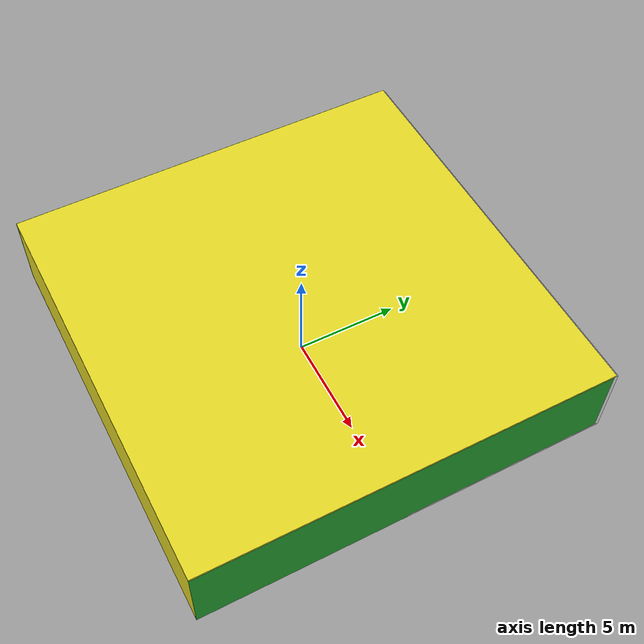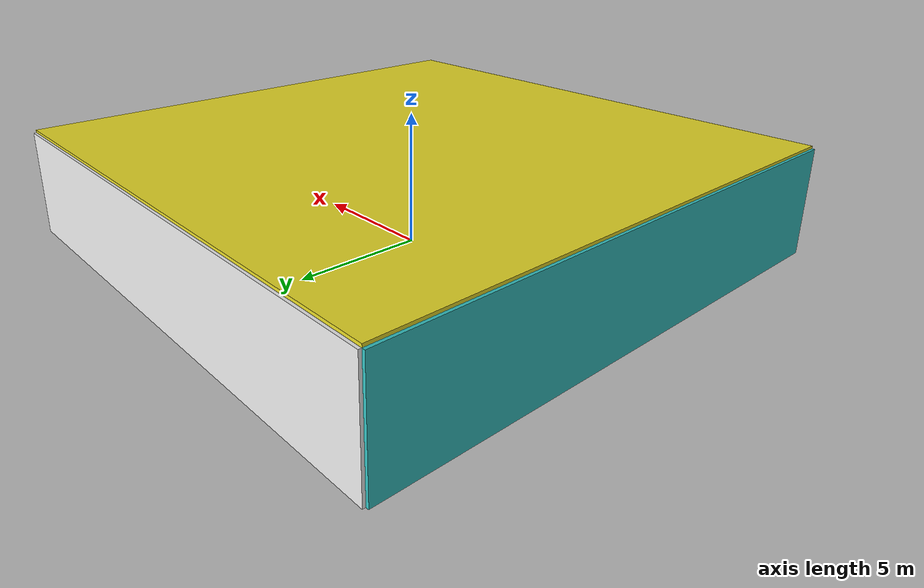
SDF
<sdf version="1.4">
 <world name="default">
  <physics type="ode">
   <max_step_size>0.001</max_step_size>
   <real_time_factor>1</real_time_factor>
   <real_time_update_rate>1000</real_time_update_rate>
   <gravity>0 0 -9.8</gravity>
  </physics>
  <scene><ambient>0.4 0.4 0.4 1</ambient><background>0.7 0.7 0.7 1</background><shadows>1</shadows></scene>
  <model name="Surrounding">
   <static>1</static>
   <link name="Ceiling">
    <collision name="Ceiling_Collision"><geometry><box><size>20 20 0.1</size></box></geometry></collision>
    <visual name="Ceiling_Visual">
     <geometry><box><size>20 20 0.1</size></box></geometry>
     <material>
      <script><uri>file://media/materials/scripts/gazebo.material</uri><name>Gazebo/YellowGlow</name></script>
     </material>
    </visual>
    <pose>0 0 4.05 0 0 0</pose>
   </link>
   <link name="Wall_South">
    <collision name="Wall_South_Collision">
     <geometry><box><size>20 0 4</size></box></geometry>
     <pose>0 0 2 0 -0 0</pose>
    </collision>
    <visual name="Wall_South_Visual">
     <pose>0 0 2 0 -0 0</pose>
     <geometry><box><size>20 0 4</size></box></geometry>
     <material>
      <script><uri>file://media/materials/scripts/gazebo.material</uri><name>Gazebo/YellowGlow</name></script>
     </material>
    </visual>
    <velocity_decay><linear>0</linear><angular>0</angular></velocity_decay>
    <pose>0 -10 0 0 -0 0</pose>
   </link>
   <link name="Wall_East">
    <collision name="Wall_21_Collision">
     <geometry><box><size>20 0 4</size></box></geometry>
     <pose>0 0 2 0 -0 0</pose>
    </collision>
    <visual name="Wall_21_Visual">
     <pose>0 0 2 0 -0 0</pose>
     <geometry><box><size>20 0 4</size></box></geometry>
     <material>
      <script><uri>file://media/materials/scripts/gazebo.material</uri><name>Gazebo/Green</name></script>
     </material>
    </visual>
    <velocity_decay><linear>0</linear><angular>0</angular></velocity_decay>
    <pose>10 0 0 0 -0 1.5708</pose>
   </link>
   <link name="Wall_North">
    <collision name="Wall_22_Collision">
     <geometry><box><size>20 0.2 4</size></box></geometry>
     <pose>0 0 2 0 -0 0</pose>
    </collision>
    <visual name="Wall_22_Visual">
     <pose>0 0 2 0 -0 0</pose>
     <geometry><box><size>20 0.2 4</size></box></geometry>
     <material>
      <script><uri>file://media/materials/scripts/gazebo.material</uri><name>Gazebo/White</name></script>
     </material>
    </visual>
    <velocity_decay><linear>0</linear><angular>0</angular></velocity_decay>
    <pose>0 10 0 0 -0 0</pose>
   </link>
   <link name="Wall_West">
    <collision name="Wall_23_Collision">
     <geometry><box><size>20 0.2 4</size></box></geometry>
     <pose>0 0 2 0 -0 0</pose>
    </collision>
    <visual name="Wall_23_Visual">
     <pose>0 0 2 0 -0 0</pose>
     <geometry><box><size>20 0.2 4</size></box></geometry>
     <material>
      <script><uri>file://media/materials/scripts/gazebo.material</uri><name>Gazebo/Turquoise</name></script>
     </material>
    </visual>
    <velocity_decay><linear>0</linear><angular>0</angular></velocity_decay>
    <pose>-10 0 0 0 0 -1.5708</pose>
   </link>
   <link name="Ground_link">
    <collision name="collision">
     <pose>0 0 .05 0 -0 0</pose>
     <geometry><box><size>20 20 0.1</size></box></geometry>
    </collision>
    <visual name="visual">
     <pose>0 0 .05 0 -0 0</pose>
     <geometry><box><size>20 20 0.1</size></box></geometry>
     <material>
      <script><uri>file://media/materials/scripts/gazebo.material</uri><name>Gazebo/WhiteGlow</name></script>
     </material>
    </visual>
   </link>
   <static>1</static>
  </model>
  <spherical_coordinates>
   <surface_model>EARTH_WGS84</surface_model>
   <latitude_deg>0</latitude_deg>
   <longitude_deg>0</longitude_deg>
   <elevation>0</elevation>
   <heading_deg>0</heading_deg>
  </spherical_coordinates>
  <light name="lightball_0" type="diffuse">
   <diffuse>0.8 0.8 0.8 1</diffuse>
   <specular>0.2 0.2 0.2 1</specular>
   <attenuation>
    <range>100</range>
    <constant>0.7</constant>
    <linear>0.01</linear>
    <quadratic>0.001</quadratic>
   </attenuation>
   <direction>-0.5 0.1 -0.9</direction>
   <pose>1.84231662139 -2.12688093923 1.29876900893 0 0 0</pose>
  </light>
  <light name="lightball_1" type="diffuse">
   <diffuse>0.8 0.8 0.8 1</diffuse>
   <specular>0.2 0.2 0.2 1</specular>
   <attenuation>
    <range>100</range>
    <constant>0.7</constant>
    <linear>0.01</linear>
    <quadratic>0.001</quadratic>
   </attenuation>
   <direction>-0.5 0.1 -0.9</direction>
   <pose>2.3206398161 -1.17776025731 1.4423505841 0 0 0</pose>
  </light>
  <light name="lightball_2" type="diffuse">
   <diffuse>0.8 0.8 0.8 1</diffuse>
   <specular>0.2 0.2 0.2 1</specular>
   <attenuation>
    <range>100</range>
    <constant>0.7</constant>
    <linear>0.01</linear>
    <quadratic>0.001</quadratic>
   </attenuation>
   <direction>-0.5 0.1 -0.9</direction>
   <pose>8.63733530466 -8.37776552783 1.10756171982 0 0 0</pose>
  </light>
  <light name="lightball_3" type="diffuse">
   <diffuse>0.8 0.8 0.8 1</diffuse>
   <specular>0.2 0.2 0.2 1</specular>
   <attenuation>
    <range>100</range>
    <constant>0.7</constant>
    <linear>0.01</linear>
    <quadratic>0.001</quadratic>
   </attenuation>
   <direction>-0.5 0.1 -0.9</direction>
   <pose>-8.87431624111 1.54439522073 1.09344179603 0 0 0</pose>
  </light>
  <light name="lightball_4" type="diffuse">
   <diffuse>0.8 0.8 0.8 1</diffuse>
   <specular>0.2 0.2 0.2 1</specular>
   <attenuation>
    <range>100</range>
    <constant>0.7</constant>
    <linear>0.01</linear>
    <quadratic>0.001</quadratic>
   </attenuation>
   <direction>-0.5 0.1 -0.9</direction>
   <pose>3.79044444671 8.78845633536 3.54228378845 0 0 0</pose>
  </light>
  <light name="lightball_5" type="diffuse">
   <diffuse>0.8 0.8 0.8 1</diffuse>
   <specular>0.2 0.2 0.2 1</specular>
   <attenuation>
    <range>100</range>
    <constant>0.7</constant>
    <linear>0.01</linear>
    <quadratic>0.001</quadratic>
   </attenuation>
   <direction>-0.5 0.1 -0.9</direction>
   <pose>-8.40699830146 -1.48737315722 2.10314652021 0 0 0</pose>
  </light>
  <light name="lightball_6" type="diffuse">
   <diffuse>0.8 0.8 0.8 1</diffuse>
   <specular>0.2 0.2 0.2 1</specular>
   <attenuation>
    <range>100</range>
    <constant>0.7</constant>
    <linear>0.01</linear>
    <quadratic>0.001</quadratic>
   </attenuation>
   <direction>-0.5 0.1 -0.9</direction>
   <pose>-0.987012828315 3.3947559652 2.27426711202 0 0 0</pose>
  </light>
  <light name="lightball_7" type="diffuse">
   <diffuse>0.8 0.8 0.8 1</diffuse>
   <specular>0.2 0.2 0.2 1</specular>
   <attenuation>
    <range>100</range>
    <constant>0.7</constant>
    <linear>0.01</linear>
    <quadratic>0.001</quadratic>
   </attenuation>
   <direction>-0.5 0.1 -0.9</direction>
   <pose>-5.76117517761 9.85499961625 0.742829214774 0 0 0</pose>
  </light>
  <include><uri>model://table</uri><pose>-6.78724314447 -4.31131213748 0 0 0 0.480547540738</pose></include>
  <include>
   <uri>model://robocup_3Dsim_goal</uri>
   <pose>-7.66638547048 -1.05961234849 0 0 0 0.381114932829</pose>
  </include>
  <include><uri>model://cabinet</uri><pose>-8.23103639825 7.24450412186 0 0 0 1.09020396552</pose></include>
  <include><uri>model://cabinet</uri><pose>-1.07912294346 4.89984394897 0 0 0 0.707091241767</pose></include>
  <include>
   <uri>model://textured_shapes</uri>
   <pose>4.88939479189 7.71058392454 0 0 0 1.57043093109</pose>
  </include>
  <include>
   <uri>model://construction_cone</uri>
   <pose>7.43145369947 -4.05591324248 0 0 0 2.66339817274</pose>
  </include>
 </world>
</sdf>

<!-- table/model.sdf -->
<sdf version="1.5">
  <model name="table">
    <static>true</static>
    <link name="link">
      <collision name="surface">
        <pose>0 0 1.0 0 0 0</pose>
        <geometry>
          <box>
            <size>1.5 0.8 0.03</size>
          </box>
        </geometry>
        <surface>
          <friction>
            <ode>
              <mu>0.6</mu>
              <mu2>0.6</mu2>
            </ode>
          </friction>
        </surface>
      </collision>
      <visual name="visual1">
        <pose>0 0 1.0 0 0 0</pose>
        <geometry>
          <box>
            <size>1.5 0.8 0.03</size>
          </box>
        </geometry>
        <material>
          <script>
            <uri>model://media/materials/scripts/gazebo.material</uri>
            <name>Gazebo/Wood</name>
          </script>
        </material>
      </visual>
      <collision name="front_left_leg">
        <pose>0.68 0.38 0.5 0 0 0</pose>
        <geometry>
          <cylinder>
            <radius>0.02</radius>
            <length>1.0</length>
          </cylinder>
        </geometry>
      </collision>
      <visual name="front_left_leg">
        <pose>0.68 0.38 0.5 0 0 0</pose>
        <geometry>
          <cylinder>
            <radius>0.02</radius>
            <length>1.0</length>
          </cylinder>
        </geometry>
        <material>
          <script>
            <uri>model://media/materials/scripts/gazebo.material</uri>
            <name>Gazebo/Grey</name>
          </script>
        </material>
      </visual>
      <collision name="front_right_leg">
        <pose>0.68 -0.38 0.5 0 0 0</pose>
        <geometry>
          <cylinder>
            <radius>0.02</radius>
            <length>1.0</length>
          </cylinder>
        </geometry>
      </collision>
      <visual name="front_right_leg">
        <pose>0.68 -0.38 0.5 0 0 0</pose>
        <geometry>
          <cylinder>
            <radius>0.02</radius>
            <length>1.0</length>
          </cylinder>
        </geometry>
        <material>
          <script>
            <uri>model://media/materials/scripts/gazebo.material</uri>
            <name>Gazebo/Grey</name>
          </script>
        </material>
      </visual>
      <collision name="back_right_leg">
        <pose>-0.68 -0.38 0.5 0 0 0</pose>
        <geometry>
          <cylinder>
            <radius>0.02</radius>
            <length>1.0</length>
          </cylinder>
        </geometry>
      </collision>
      <visual name="back_right_leg">
        <pose>-0.68 -0.38 0.5 0 0 0</pose>
        <geometry>
          <cylinder>
            <radius>0.02</radius>
            <length>1.0</length>
          </cylinder>
        </geometry>
        <material>
          <script>
            <uri>model://media/materials/scripts/gazebo.material</uri>
            <name>Gazebo/Grey</name>
          </script>
        </material>
      </visual>
      <collision name="back_left_leg">
        <pose>-0.68 0.38 0.5 0 0 0</pose>
        <geometry>
          <cylinder>
            <radius>0.02</radius>
            <length>1.0</length>
          </cylinder>
        </geometry>
      </collision>
      <visual name="back_left_leg">
        <pose>-0.68 0.38 0.5 0 0 0</pose>
        <geometry>
          <cylinder>
            <radius>0.02</radius>
            <length>1.0</length>
          </cylinder>
        </geometry>
        <material>
          <script>
            <uri>model://media/materials/scripts/gazebo.material</uri>
            <name>Gazebo/Grey</name>
          </script>
        </material>
      </visual>
    </link>
  </model>
</sdf>

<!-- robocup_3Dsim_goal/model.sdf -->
<sdf version="1.5">
  <model name="robocup_3d_goal">
    <static>true</static>
    <link name="left_post">
      <pose>0 1.05 0.45 0 0 0</pose>
      <collision name="collision">
        <geometry>
          <cylinder>
            <radius>0.05</radius>
            <length>0.9</length>
          </cylinder>
        </geometry>
      </collision>
      <visual name="visual">
        <geometry>
          <cylinder>
            <radius>0.05</radius>
            <length>0.9</length>
          </cylinder>
        </geometry>
        <material>
          <script>
            <uri>file://media/materials/scripts/gazebo.material</uri>
            <name>Gazebo/ZincYellow</name>
          </script>
        </material>
      </visual>
    </link>
    <link name="left_support_horiz_lower">
      <pose>0.30 1.05 0.01 0 0 0</pose>
      <collision name="collision">
        <geometry>
          <box>
            <size>0.50 0.02 0.02</size>
          </box>
        </geometry>
      </collision>
      <visual name="visual">
        <geometry>
          <box>
            <size>0.50 0.02 0.02</size>
          </box>
        </geometry>
        <material>
          <script>
            <uri>file://media/materials/scripts/gazebo.material</uri>
            <name>Gazebo/White</name>
          </script>
        </material>
      </visual>
    </link>
    <link name="left_support_horiz_upper">
      <pose>0.30 1.05 0.79 0 0 0</pose>
      <collision name="collision">
        <geometry>
          <box>
            <size>0.50 0.02 0.02</size>
          </box>
        </geometry>
      </collision>
      <visual name="visual">
        <geometry>
          <box>
            <size>0.50 0.02 0.02</size>
          </box>
        </geometry>
        <material>
          <script>
            <uri>file://media/materials/scripts/gazebo.material</uri>
            <name>Gazebo/White</name>
          </script>
        </material>
      </visual>
    </link>
    <link name="left_support_vertical">
      <pose>0.56 1.05 0.4 0 1.5708 0</pose>
      <collision name="collision">
        <geometry>
          <box>
            <size>0.80 0.02 0.02</size>
          </box>
        </geometry>
      </collision>
      <visual name="visual">
        <geometry>
          <box>
            <size>0.80 0.02 0.02</size>
          </box>
        </geometry>
        <material>
          <script>
            <uri>file://media/materials/scripts/gazebo.material</uri>
            <name>Gazebo/White</name>
          </script>
        </material>
      </visual>
    </link>
    <link name="right_support_horiz_lower">
      <pose>0.30 -1.05 0.01 0 0 0</pose>
      <collision name="collision">
        <geometry>
          <box>
            <size>0.50 0.02 0.02</size>
          </box>
        </geometry>
      </collision>
      <visual name="visual">
        <geometry>
          <box>
            <size>0.50 0.02 0.02</size>
          </box>
        </geometry>
        <material>
          <script>
            <uri>file://media/materials/scripts/gazebo.material</uri>
            <name>Gazebo/White</name>
          </script>
        </material>
      </visual>
    </link>
    <link name="right_support_horiz_upper">
      <pose>0.30 -1.05 0.79 0 0 0</pose>
      <collision name="collision">
        <geometry>
          <box>
            <size>0.50 0.02 0.02</size>
          </box>
        </geometry>
      </collision>
      <visual name="visual">
        <geometry>
          <box>
            <size>0.50 0.02 0.02</size>
          </box>
        </geometry>
        <material>
          <script>
            <uri>file://media/materials/scripts/gazebo.material</uri>
            <name>Gazebo/White</name>
          </script>
        </material>
      </visual>
    </link>
    <link name="right_support_vertical">
      <pose>0.56 -1.05 0.4 0 1.5708 0</pose>
      <collision name="collision">
        <geometry>
          <box>
            <size>0.80 0.02 0.02</size>
          </box>
        </geometry>
      </collision>
      <visual name="visual">
        <geometry>
          <box>
            <size>0.80 0.02 0.02</size>
          </box>
        </geometry>
        <material>
          <script>
            <uri>file://media/materials/scripts/gazebo.material</uri>
            <name>Gazebo/White</name>
          </script>
        </material>
      </visual>
    </link>
    <link name="center_support_horiz_lower">
      <pose>0.56 0 0.01 0 1.5708 0</pose>
      <collision name="collision">
        <geometry>
          <box>
            <size>0.02 2.08 0.02</size>
          </box>
        </geometry>
      </collision>
      <visual name="visual">
        <geometry>
          <box>
            <size>0.02 2.08 0.02</size>
          </box>
        </geometry>
        <material>
          <script>
            <uri>file://media/materials/scripts/gazebo.material</uri>
            <name>Gazebo/White</name>
          </script>
        </material>
      </visual>
    </link>
    <link name="center_support_horiz_upper">
      <pose>0.56 0 0.79 0 1.5708 0</pose>
      <collision name="collision">
        <geometry>
          <box>
            <size>0.02 2.08 0.02</size>
          </box>
        </geometry>
      </collision>
      <visual name="visual">
        <geometry>
          <box>
            <size>0.02 2.08 0.02</size>
          </box>
        </geometry>
        <material>
          <script>
            <uri>file://media/materials/scripts/gazebo.material</uri>
            <name>Gazebo/White</name>
          </script>
        </material>
      </visual>
    </link>
    <link name="right_post">
      <pose>0 -1.05 0.45 0 0 0</pose>
      <collision name="collision">
        <geometry>
          <cylinder>
            <radius>0.05</radius>
            <length>0.9</length>
          </cylinder>
        </geometry>
      </collision>
      <visual name="visual">
        <geometry>
          <cylinder>
            <radius>0.05</radius>
            <length>0.9</length>
          </cylinder>
        </geometry>
        <material>
          <script>
            <uri>file://media/materials/scripts/gazebo.material</uri>
            <name>Gazebo/ZincYellow</name>
          </script>
        </material>
      </visual>
    </link>
    <link name="crossbar">
      <pose>0 0 0.85 1.57 1.57 0</pose>
      <collision name="collision">
        <geometry>
          <cylinder>
            <radius>0.05</radius>
            <length>2.0</length>
          </cylinder>
        </geometry>
      </collision>
      <visual name="visual">
        <geometry>
          <cylinder>
            <radius>0.05</radius>
            <length>2.0</length>
          </cylinder>
        </geometry>
        <material>
          <script>
            <uri>file://media/materials/scripts/gazebo.material</uri>
            <name>Gazebo/ZincYellow</name>
          </script>
        </material>
      </visual>
    </link>
    <link name="center_net">
      <pose>0.56 0 0.40 0 0 0</pose>
      <collision name="collision">
        <geometry>
          <box>
            <size>0.01 2.1 0.80</size>
          </box>
        </geometry>
      </collision>
      <visual name="visual">
        <geometry>
          <box>
            <size>0.01 2.1 0.80</size>
          </box>
        </geometry>
        <material>
          <script>
            <uri>model://../model_source/models/robocup09_spl_field/materials/scripts/</uri>
            <uri>model://../model_source/models/robocup09_spl_field/materials/textures/</uri>
            <name>RoboCup/Net</name>
          </script>
        </material>
      </visual>
    </link>
    <link name="left_net">
      <pose>0.30 1.05 0.40 0 0 0</pose>
      <collision name="collision">
        <geometry>
          <box>
            <size>0.50 0.01 0.76</size>
          </box>
        </geometry>
      </collision>
      <visual name="visual">
        <geometry>
          <box>
            <size>0.50 0.01 0.76</size>
          </box>
        </geometry>
        <material>
          <script>
            <uri>model://../model_source/models/robocup09_spl_field/materials/scripts/</uri>
            <uri>model://../model_source/models/robocup09_spl_field/materials/textures/</uri>
            <name>RoboCup/Net</name>
          </script>
        </material>
      </visual>
    </link>
    <link name="right_net">
      <pose>0.30 -1.05 0.40 0 0 0</pose>
      <collision name="collision">
        <geometry>
          <box>
            <size>0.50 0.01 0.76</size>
          </box>
        </geometry>
      </collision>
      <visual name="visual">
        <geometry>
          <box>
            <size>0.50 0.01 0.76</size>
          </box>
        </geometry>
        <material>
          <script>
            <uri>model://../model_source/models/robocup09_spl_field/materials/scripts/</uri>
            <uri>model://../model_source/models/robocup09_spl_field/materials/textures/</uri>
            <name>RoboCup/Net</name>
          </script>
        </material>
      </visual>
    </link>
  </model>
</sdf>

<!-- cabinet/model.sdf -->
<sdf version="1.5">
  <model name="cabinet">
    <static>true</static>
    <link name="cabinet_bottom_plate">
      <inertial>
        <pose>0 0 -1 0 0 0</pose>
        <inertia>
          <ixx>2.050000</ixx>
          <ixy>0</ixy>
          <ixz>0</ixz>
          <iyy>2.050000</iyy>
          <iyz>0</iyz>
          <izz>2.050000</izz>
        </inertia>
        <mass>25.000000</mass>
      </inertial>
      <collision name="cabinet_bottom_plate_geom">
        <pose>0 0 0.010000 0 0 0</pose>
        <geometry>
          <box>
            <size>0.450000 0.450000 0.020000</size>
          </box>
        </geometry>
      </collision>
      <visual name="cabinet_bottom_plate_geom_visual">
        <pose>0 0 0.010000 0 0 0</pose>
        <geometry>
          <box>
            <size>0.450000 0.450000 0.020000</size>
          </box>
        </geometry>
        <material>
          <script>
            <uri>model://media/materials/scripts/gazebo.material</uri>
            <name>Gazebo/Wood</name>
          </script>
        </material>
      </visual>
      <collision name="cabinet_bottom_plate_geom_cabinet_back_plate">
        <pose>0.235000 0 0.510000 0 0 0</pose>
        <geometry>
          <box>
            <size>0.020000 0.450000 1.020000</size>
          </box>
        </geometry>
      </collision>
      <visual name="cabinet_bottom_plate_geom_cabinet_back_plate_visual">
        <pose>0.235000 0 0.510000 0 0 0</pose>
        <geometry>
          <box>
            <size>0.020000 0.450000 1.020000</size>
          </box>
        </geometry>
        <material>
          <script>
            <uri>model://media/materials/scripts/gazebo.material</uri>
            <name>Gazebo/Wood</name>
          </script>
        </material>
      </visual>
      <collision name="cabinet_bottom_plate_geom_cabinet_left_plate">
        <pose>0 0.235000 0.510000 0 0 0</pose>
        <geometry>
          <box>
            <size>0.450000 0.020000 1.020000</size>
          </box>
        </geometry>
      </collision>
      <visual name="cabinet_bottom_plate_geom_cabinet_left_plate_visual">
        <pose>0 0.235000 0.510000 0 0 0</pose>
        <geometry>
          <box>
            <size>0.450000 0.020000 1.020000</size>
          </box>
        </geometry>
        <material>
          <script>
            <uri>model://media/materials/scripts/gazebo.material</uri>
            <name>Gazebo/Wood</name>
          </script>
        </material>
      </visual>
      <collision name="cabinet_bottom_plate_geom_cabinet_middle_plate">
        <pose>0 0 0.510000 0 0 0</pose>
        <geometry>
          <box>
            <size>0.450000 0.450000 0.020000</size>
          </box>
        </geometry>
      </collision>
      <visual name="cabinet_bottom_plate_geom_cabinet_middle_plate_visual">
        <pose>0 0 0.510000 0 0 0</pose>
        <geometry>
          <box>
            <size>0.450000 0.450000 0.020000</size>
          </box>
        </geometry>
        <material>
          <script>
            <uri>model://media/materials/scripts/gazebo.material</uri>
            <name>Gazebo/Wood</name>
          </script>
        </material>
      </visual>
      <collision name="cabinet_bottom_plate_geom_cabinet_right_plate">
        <pose>0 -0.235000 0.510000 0 0 0</pose>
        <geometry>
          <box>
            <size>0.450000 0.020000 1.020000</size>
          </box>
        </geometry>
      </collision>
      <visual name="cabinet_bottom_plate_geom_cabinet_right_plate_visual">
        <pose>0 -0.235000 0.510000 0 0 0</pose>
        <geometry>
          <box>
            <size>0.450000 0.020000 1.020000</size>
          </box>
        </geometry>
        <material>
          <script>
            <uri>model://media/materials/scripts/gazebo.material</uri>
            <name>Gazebo/Wood</name>
          </script>
        </material>
      </visual>
      <collision name="cabinet_bottom_plate_geom_cabinet_top_plate">
        <pose>0 0 1.010000 0 0 0</pose>
        <geometry>
          <box>
            <size>0.450000 0.450000 0.020000</size>
          </box>
        </geometry>
      </collision>
      <visual name="cabinet_bottom_plate_geom_cabinet_top_plate_visual">
        <pose>0 0 1.010000 0 0 0</pose>
        <geometry>
          <box>
            <size>0.450000 0.450000 0.020000</size>
          </box>
        </geometry>
        <material>
          <script>
            <uri>model://media/materials/scripts/gazebo.material</uri>
            <name>Gazebo/Wood</name>
          </script>
        </material>
      </visual>
    </link>
  </model>
</sdf>

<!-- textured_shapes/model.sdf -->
<sdf version="1.6">
  <model name="textured_shapes">
    <pose>0 0 0.5 0 0 0</pose>
    <link name="box">
      <pose>0 -1.5 0 0 0 0</pose>
      <collision name="collision">
        <geometry>
          <box>
            <size>1 1 1</size>
          </box>
        </geometry>
      </collision>
      <visual name="visual">
        <geometry>
          <box>
            <size>1 1 1</size>
          </box>
        </geometry>
        <material>
          <script>
            <uri>model://../model_source/models/textured_shapes/materials/scripts</uri>
            <uri>model://../model_source/models/textured_shapes/materials/textures</uri>
            <name>TexturedShape/Squares</name>
          </script>
        </material>
      </visual>
    </link>
    <link name="sphere">
      <collision name="collision">
        <geometry>
          <sphere>
            <radius>0.5</radius>
          </sphere>
        </geometry>
      </collision>
      <visual name="visual">
        <geometry>
          <sphere>
            <radius>0.5</radius>
          </sphere>
        </geometry>
        <material>
          <script>
            <uri>model://../model_source/models/textured_shapes/materials/scripts</uri>
            <uri>model://../model_source/models/textured_shapes/materials/textures</uri>
            <name>TexturedShape/Squares</name>
          </script>
        </material>
      </visual>
    </link>
    <link name="cylinder">
      <pose>0 1.5 0 0 0 0</pose>
      <collision name="collision">
        <geometry>
          <cylinder>
            <radius>0.5</radius>
            <length>1</length>
          </cylinder>
        </geometry>
      </collision>
      <visual name="visual">
        <geometry>
          <cylinder>
            <radius>0.5</radius>
            <length>1</length>
          </cylinder>
        </geometry>
        <material>
          <script>
            <uri>model://../model_source/models/textured_shapes/materials/scripts</uri>
            <uri>model://../model_source/models/textured_shapes/materials/textures</uri>
            <name>TexturedShape/Squares</name>
          </script>
        </material>
      </visual>
    </link>
  </model>
</sdf>

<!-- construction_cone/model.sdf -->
<sdf version="1.5">
  <model name="Construction Cone">
    <link name="link">
      <collision name="collision">
        <geometry>
          <mesh>
            <scale>10 10 10</scale>
            <uri>file://isr-testbed/construction_cone/meshes/construction_cone.dae</uri>
          </mesh>
        </geometry>
      </collision>
      <visual name="visual">
        <geometry>
          <mesh>
            <scale>10 10 10</scale>
            <uri>file://isr-testbed/construction_cone/meshes/construction_cone.dae</uri>
          </mesh>
        </geometry>
      </visual>
    </link>
  </model>
</sdf>
